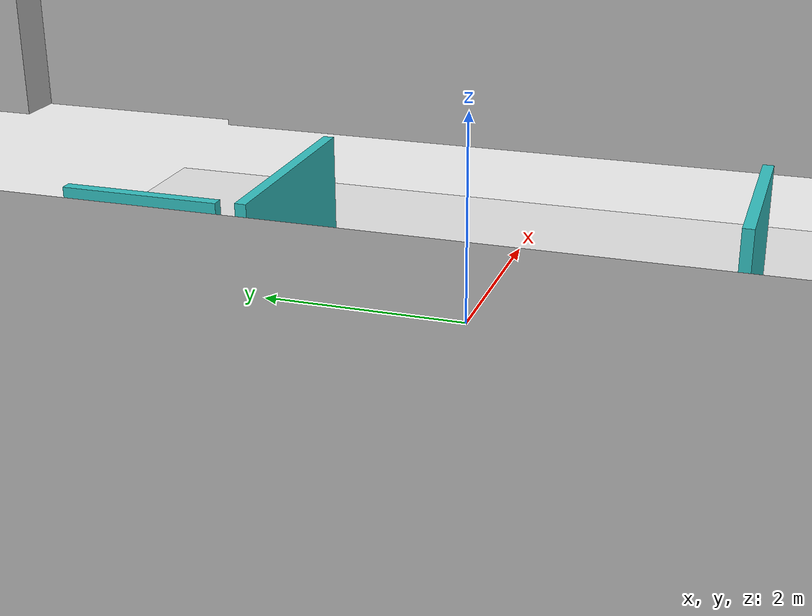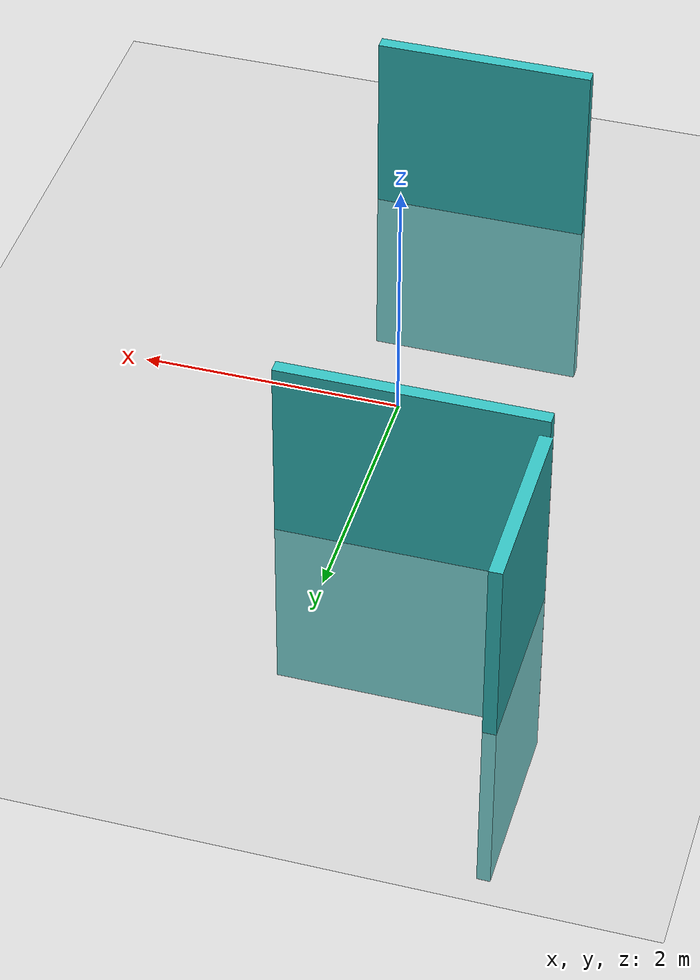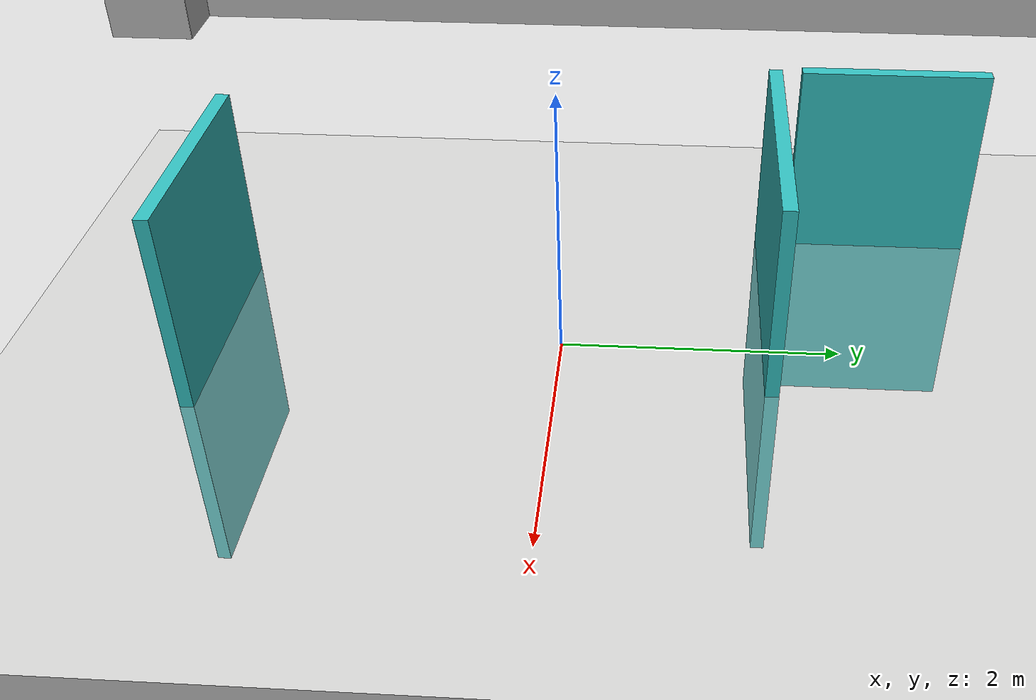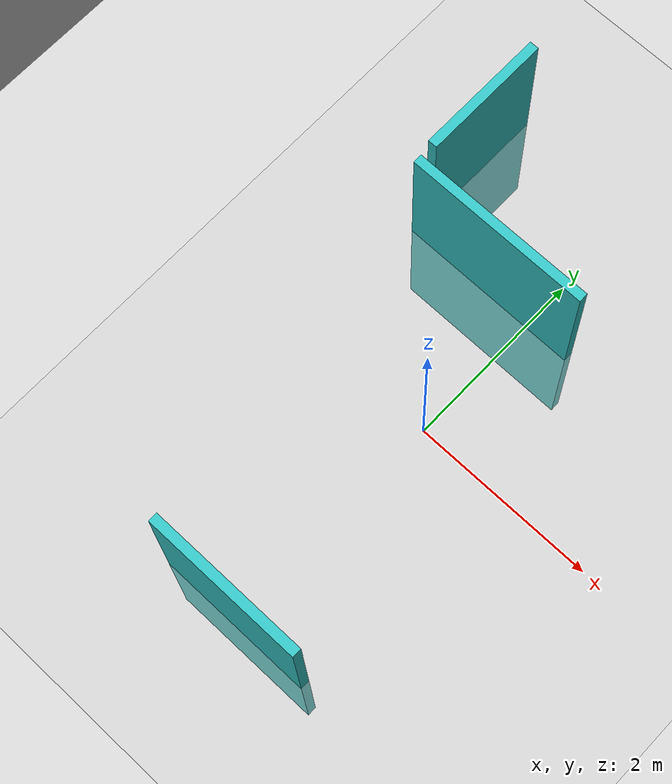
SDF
<?xml version="1.0" ?>
<sdf version="1.4">
  <world name="fme">
  <!-- Set camera position (Lanzar Gazebo) -->
    <gui fullscreen='0'>
      <camera name='user_camera'>
        <pose>-2 0.5 35 0 1.5618 -3.13384</pose>
        <view_controller>orbit</view_controller>
      </camera>
    </gui>
    <!-- A ground plane -->
    <include>
      <uri>model://ground_plane</uri>
    </include>
    <!-- A global light source -->
    <include>
      <uri>model://sun</uri>
    </include>
    <!-- IRI Lab Robotica MAP-->
    <include>
      <uri>model://fme_opened_door_HAS_obstaclesEly</uri>
      <name>fme_opened_door_HAS_obstaclesEly</name>
      <pose>0 0 0 0 0 0</pose>
    </include>
<!-- Hide and Seek obstacle 1.1!-->
<model name="my_model1">
  <pose>0 -2.5 0 0 0 0.0</pose>
  <static>true</static>
    <link name="link">
      <inertial>
        <mass>1.0</mass>
        <inertia>
          <ixx>1.0</ixx>
          <ixy>0.0</ixy>
          <ixz>0.0</ixz>
          <iyy>-1.0</iyy>
          <iyz>0.0</iyz>
          <izz>1.0</izz>
        </inertia>
      </inertial>
      <collision name="collision">
        <geometry>
          <box>
            <size>1.7 0.1 3</size>
          </box>
        </geometry>
      </collision>
      <visual name="visual">
        <geometry>
          <box>
            <size>1.7 0.1 3</size>
          </box>
        </geometry>
          <material>
            <script>
              <uri>file://media/materials/scripts/gazebo.material</uri>
              <name>Gazebo/Turquoise</name>
            </script>
          </material>
      </visual>
    </link>
  </model>
<!-- Hide and Seek obstacle 1.2!-->
<!-- Hide and Seek obstacle 2!-->
<model name="my_model2">
  <pose>-1.5 2.4 0 0 0 0</pose>
  <static>true</static>
    <link name="link">
      <inertial>
        <mass>1.0</mass>
        <inertia>
          <ixx>1.0</ixx>
          <ixy>0.0</ixy>
          <ixz>0.0</ixz>
          <iyy>1.0</iyy>
          <iyz>0.0</iyz>
          <izz>1.0</izz>
        </inertia>
      </inertial>
      <collision name="collision">
        <geometry>
          <box>
            <size>0.1 1.4 3</size>
          </box>
        </geometry>
      </collision>
      <visual name="visual">
        <geometry>
          <box>
            <size>0.1 1.4 3</size>
          </box>
        </geometry>
          <material>
            <script>
              <uri>file://media/materials/scripts/gazebo.material</uri>
              <name>Gazebo/Turquoise</name>
            </script>
          </material>
      </visual>
    </link>
  </model>
<!-- Hide and Seek obstacle 3!-->
<model name="my_model3">
  <pose>-0.5 1.5 0 0 0 0</pose>
  <static>true</static>
    <link name="link">
      <inertial>
        <mass>1.0</mass>
        <inertia>
          <ixx>-1.0</ixx>
          <ixy>0.0</ixy>
          <ixz>0.0</ixz>
          <iyy>1.0</iyy>
          <iyz>0.0</iyz>
          <izz>1.0</izz>
        </inertia>
      </inertial>
      <collision name="collision">
        <geometry>
          <box>
            <size>2.0 0.1 3</size>
          </box>
        </geometry>
      </collision>
      <visual name="visual">
        <geometry>
          <box>
            <size>2.0 0.1 3</size>
          </box>
        </geometry>
          <material>
            <script>
              <uri>file://media/materials/scripts/gazebo.material</uri>
              <name>Gazebo/Turquoise</name>
            </script>
          </material>
      </visual>
    </link>
  </model>

  </world>
</sdf>

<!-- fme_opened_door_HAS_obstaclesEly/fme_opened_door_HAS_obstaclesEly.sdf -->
<sdf version="1.4">
  <model name="fme_opened_door">
    <static>true</static>
    <link name="link">
      <pose>0 0 0 0 0 0</pose>
      <collision name="collision">
        <geometry>
          <mesh>
            <uri>model://fme_opened_door_HAS_obstaclesEly/meshes/fme_opened_door_no_ground.stl</uri>
            <scale>1 1 1</scale>
          </mesh>
        </geometry>
      </collision>
      <visual name="visual">
        <geometry>
          <mesh>
            <uri>model://fme_opened_door_HAS_obstaclesEly/meshes/fme_opened_door_no_ground.stl</uri>
            <scale>1 1 1</scale>
          </mesh>
        </geometry>
      </visual>
    </link>
  </model>
</sdf>
